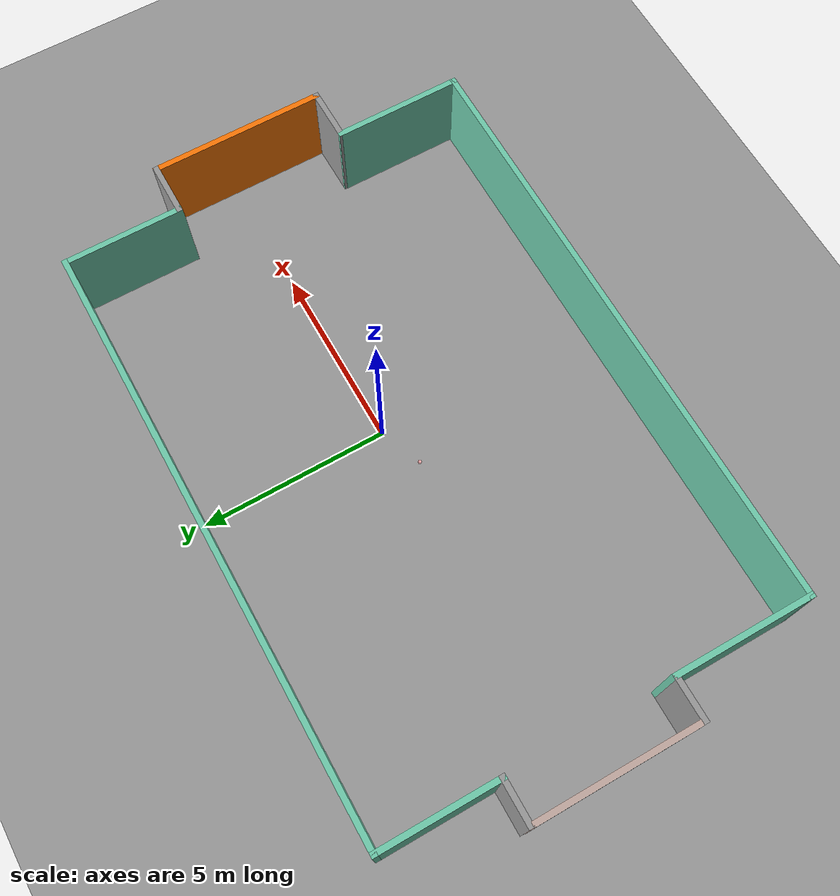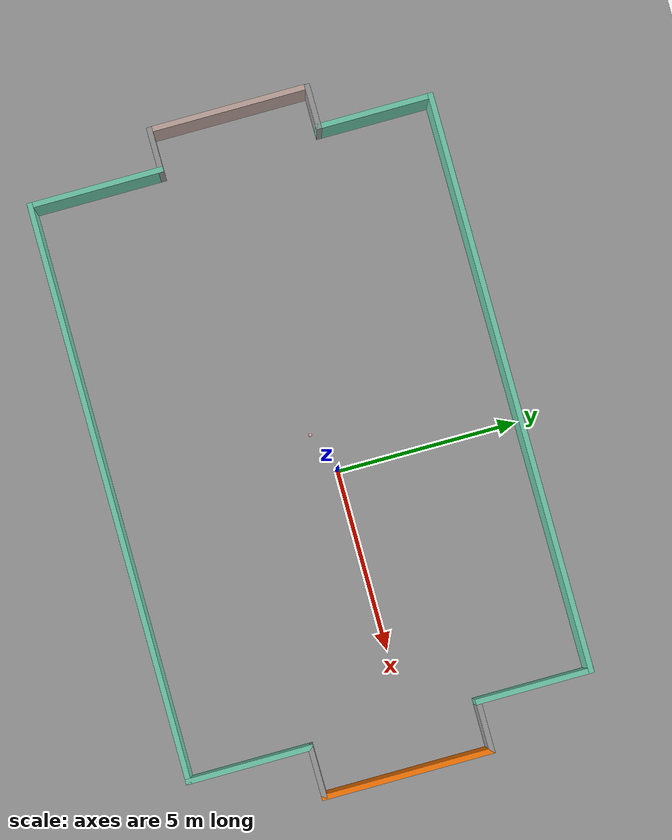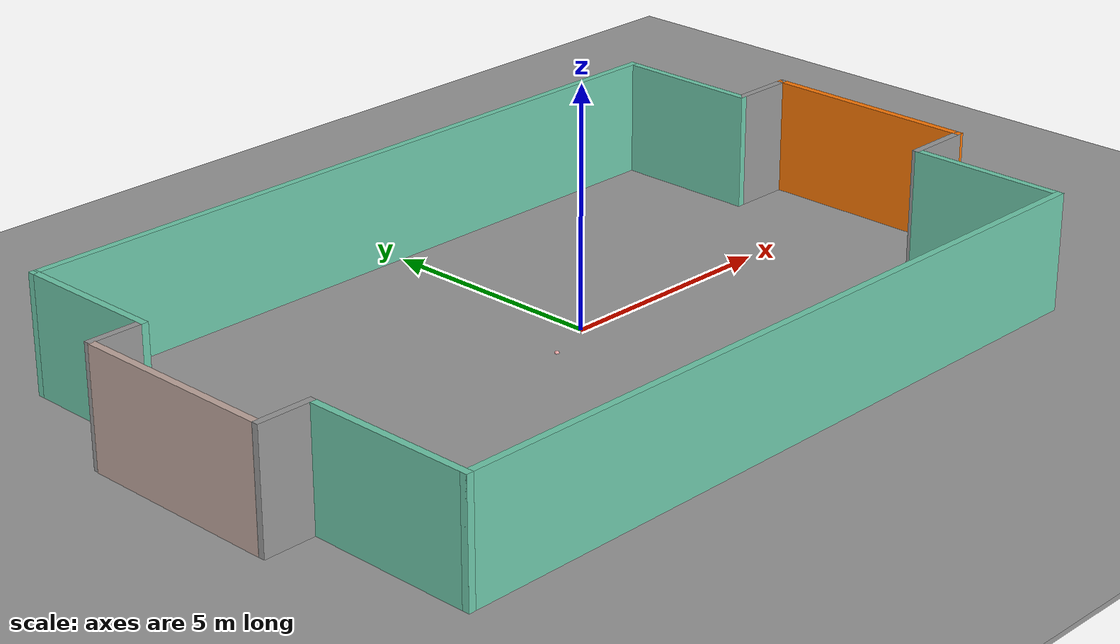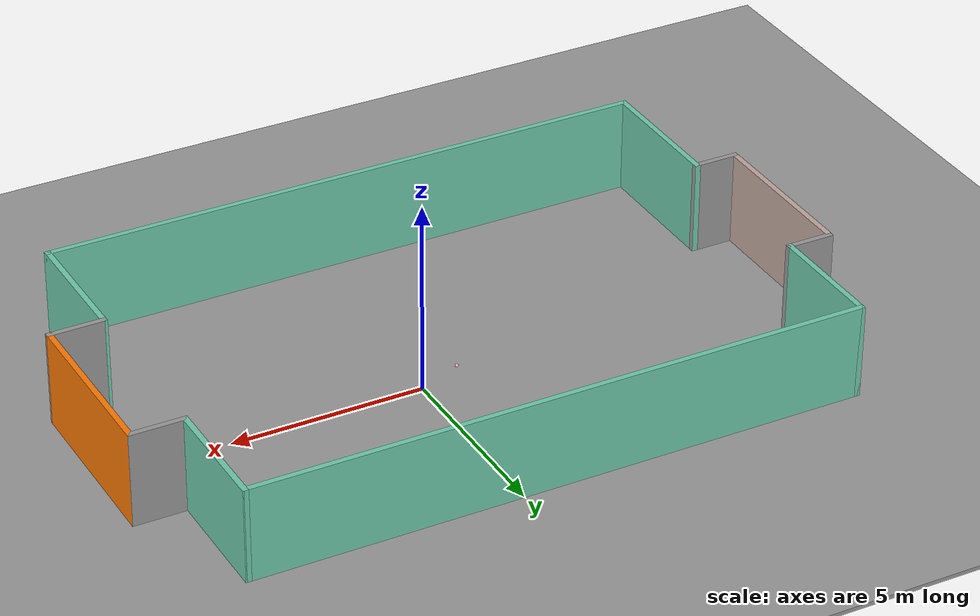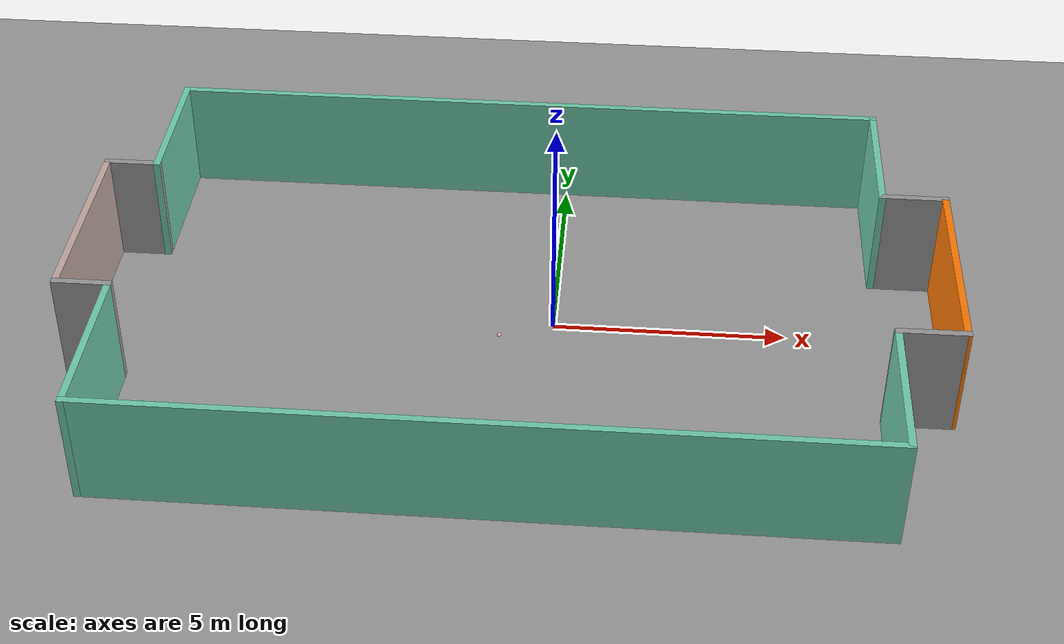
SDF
<sdf version="1.6">
 <world name="default">
  <scene><ambient>0.4 0.4 0.4 1</ambient><background>0.7 0.7 0.7 1</background><shadows>1</shadows></scene>
  <light name="sun" type="directional">
   <pose>0 0 10 0 -0 0</pose>
   <diffuse>0.8 0.8 0.8 1</diffuse>
   <specular>0.1 0.1 0.1 1</specular>
   <attenuation>
    <range>1000</range>
    <constant>0.9</constant>
    <linear>0.01</linear>
    <quadratic>0.001</quadratic>
   </attenuation>
   <direction>-0.5 0.5 -1</direction>
  </light>
  <model name="ground_plane">
   <static>1</static>
   <link name="link">
    <collision name="collision">
     <geometry><plane><normal>0 0 1</normal><size>100 100</size></plane></geometry>
     <surface><friction><ode><mu>100</mu><mu2>50</mu2></ode></friction></surface>
    </collision>
    <visual name="visual">
     <cast_shadows>0</cast_shadows>
     <geometry><plane><normal>0 0 1</normal><size>100 100</size></plane></geometry>
     <material>
      <script><uri>file://media/materials/scripts/gazebo.material</uri><name>Gazebo/Grey</name></script>
     </material>
    </visual>
   </link>
  </model>
  <physics name="default_physics" default="0" type="ode">
   <real_time_update_rate>1000</real_time_update_rate>
   <max_step_size>0.001</max_step_size>
   <real_time_factor>1</real_time_factor>
   <ode>
    <solver>
     <type>quick</type>
     <iters>150</iters>
     <precon_iters>0</precon_iters>
     <sor>1.4</sor>
     <use_dynamic_moi_rescaling>1</use_dynamic_moi_rescaling>
    </solver>
    <constraints>
     <cfm>1e-05</cfm>
     <erp>0.2</erp>
     <contact_max_correcting_vel>2000</contact_max_correcting_vel>
     <contact_surface_layer>0.01</contact_surface_layer>
    </constraints>
   </ode>
  </physics>
  <gravity>0 0 -9.8</gravity>
  <magnetic_field>6e-06 2.3e-05 -4.2e-05</magnetic_field>
  <atmosphere type="adiabatic"/>
  <spherical_coordinates>
   <surface_model>EARTH_WGS84</surface_model>
   <latitude_deg>0</latitude_deg>
   <longitude_deg>0</longitude_deg>
   <elevation>0</elevation>
   <heading_deg>0</heading_deg>
  </spherical_coordinates>
  <model name="Teren">
   <pose>-0.865263 -0.49642 0 0 -0 0</pose>
   <link name="Wall_16">
    <collision name="Wall_16_Collision">
     <geometry><box><size>16 0.15 2.5</size></box></geometry>
     <pose>0 0 1.25 0 -0 0</pose>
    </collision>
    <visual name="Wall_16_Visual">
     <pose>0 0 1.25 0 -0 0</pose>
     <geometry><box><size>16 0.15 2.5</size></box></geometry>
     <material>
      <script><uri>file://media/materials/scripts/gazebo.material</uri><name>Gazebo/Grey</name></script>
      <ambient>0.435294 0.796078 0.67451 1</ambient>
     </material>
    </visual>
    <pose>-0.126836 -5.5286 0 0 -0 3.14159</pose>
   </link>
   <link name="Wall_18">
    <collision name="Wall_18_Collision">
     <geometry><box><size>16 0.15 2.5</size></box></geometry>
     <pose>0 0 1.25 0 -0 0</pose>
    </collision>
    <visual name="Wall_18_Visual">
     <pose>0 0 1.25 0 -0 0</pose>
     <geometry><box><size>16 0.15 2.5</size></box></geometry>
     <material>
      <script><uri>file://media/materials/scripts/gazebo.material</uri><name>Gazebo/Grey</name></script>
      <ambient>0.435294 0.796078 0.67451 1</ambient>
     </material>
    </visual>
    <pose>-0.11836 5.5286 0 0 -0 0</pose>
   </link>
   <link name="Wall_20">
    <collision name="Wall_20_Collision">
     <geometry><box><size>4.25 0.15 2.5</size></box></geometry>
     <pose>0 0 1.25 0 -0 0</pose>
    </collision>
    <visual name="Wall_20_Visual">
     <pose>0 0 1.25 0 -0 0</pose>
     <geometry><box><size>4.25 0.15 2.5</size></box></geometry>
     <material>
      <script><uri>file://media/materials/scripts/gazebo.material</uri><name>Gazebo/Grey</name></script>
      <ambient>0.760784 0.662745 0.627451 1</ambient>
     </material>
    </visual>
    <pose>-9.15704 0.260164 0 0 -0 1.5708</pose>
   </link>
   <link name="Wall_22">
    <collision name="Wall_22_Collision">
     <geometry><box><size>3.25 0.15 2.5</size></box></geometry>
     <pose>0 0 1.25 0 -0 0</pose>
    </collision>
    <visual name="Wall_22_Visual">
     <pose>0 0 1.25 0 -0 0</pose>
     <geometry><box><size>3.25 0.15 2.5</size></box></geometry>
     <material>
      <script><uri>file://media/materials/scripts/gazebo.material</uri><name>Gazebo/Grey</name></script>
      <ambient>0.435294 0.796078 0.67451 1</ambient>
     </material>
    </visual>
    <pose>-8.04336 3.9786 0 0 0 -1.5708</pose>
   </link>
   <link name="Wall_23">
    <collision name="Wall_23_Collision">
     <geometry><box><size>1.25 0.15 2.5</size></box></geometry>
     <pose>0 0 1.25 0 -0 0</pose>
    </collision>
    <visual name="Wall_23_Visual">
     <pose>0 0 1.25 0 -0 0</pose>
     <geometry><box><size>1.25 0.15 2.5</size></box></geometry>
     <material>
      <script><uri>file://media/materials/scripts/gazebo.material</uri><name>Gazebo/Grey</name></script>
      <ambient>1 1 1 1</ambient>
     </material>
    </visual>
    <pose>-8.59336 2.42861 0 0 -0 3.14159</pose>
   </link>
   <link name="Wall_25">
    <collision name="Wall_25_Collision">
     <geometry><box><size>3.75 0.15 2.5</size></box></geometry>
     <pose>0 0 1.25 0 -0 0</pose>
    </collision>
    <visual name="Wall_25_Visual">
     <pose>0 0 1.25 0 -0 0</pose>
     <geometry><box><size>3.75 0.15 2.5</size></box></geometry>
     <material>
      <script><uri>file://media/materials/scripts/gazebo.material</uri><name>Gazebo/Grey</name></script>
      <ambient>0.435294 0.796078 0.67451 1</ambient>
     </material>
    </visual>
    <pose>-8.05184 -3.7286 0 0 -0 1.5708</pose>
   </link>
   <link name="Wall_26">
    <collision name="Wall_26_Collision">
     <geometry><box><size>1.25 0.15 2.5</size></box></geometry>
     <pose>0 0 1.25 0 -0 0</pose>
    </collision>
    <visual name="Wall_26_Visual">
     <pose>0 0 1.25 0 -0 0</pose>
     <geometry><box><size>1.25 0.15 2.5</size></box></geometry>
     <material>
      <script><uri>file://media/materials/scripts/gazebo.material</uri><name>Gazebo/Grey</name></script>
      <ambient>1 1 1 1</ambient>
     </material>
    </visual>
    <pose>-8.60184 -1.9286 0 0 -0 3.14159</pose>
   </link>
   <link name="Wall_28">
    <collision name="Wall_28_Collision">
     <geometry><box><size>3.5 0.15 2.5</size></box></geometry>
     <pose>0 0 1.25 0 -0 0</pose>
    </collision>
    <visual name="Wall_28_Visual">
     <pose>0 0 1.25 0 -0 0</pose>
     <geometry><box><size>3.5 0.15 2.5</size></box></geometry>
     <material>
      <script><uri>file://media/materials/scripts/gazebo.material</uri><name>Gazebo/Grey</name></script>
      <ambient>0.435294 0.796078 0.67451 1</ambient>
     </material>
    </visual>
    <pose>7.79816 -3.8536 0 0 -0 1.5708</pose>
   </link>
   <link name="Wall_30">
    <collision name="Wall_30_Collision">
     <geometry><box><size>3.25 0.15 2.5</size></box></geometry>
     <pose>0 0 1.25 0 -0 0</pose>
    </collision>
    <visual name="Wall_30_Visual">
     <pose>0 0 1.25 0 -0 0</pose>
     <geometry><box><size>3.25 0.15 2.5</size></box></geometry>
     <material>
      <script><uri>file://media/materials/scripts/gazebo.material</uri><name>Gazebo/Grey</name></script>
      <ambient>0.435294 0.796078 0.67451 1</ambient>
     </material>
    </visual>
    <pose>7.80664 3.9786 0 0 0 -1.5708</pose>
   </link>
   <link name="Wall_31">
    <collision name="Wall_31_Collision">
     <geometry><box><size>1.5 0.15 2.5</size></box></geometry>
     <pose>0 0 1.25 0 -0 0</pose>
    </collision>
    <visual name="Wall_31_Visual">
     <pose>0 0 1.25 0 -0 0</pose>
     <geometry><box><size>1.5 0.15 2.5</size></box></geometry>
     <material>
      <script><uri>file://media/materials/scripts/gazebo.material</uri><name>Gazebo/Grey</name></script>
      <ambient>1 1 1 1</ambient>
     </material>
    </visual>
    <pose>8.48164 2.42861 0 0 -0 0</pose>
   </link>
   <link name="Wall_32">
    <collision name="Wall_32_Collision">
     <geometry><box><size>4.75 0.15 2.5</size></box></geometry>
     <pose>0 0 1.25 0 -0 0</pose>
    </collision>
    <visual name="Wall_32_Visual">
     <pose>0 0 1.25 0 -0 0</pose>
     <geometry><box><size>4.75 0.15 2.5</size></box></geometry>
     <material>
      <script><uri>file://media/materials/scripts/gazebo.material</uri><name>Gazebo/Grey</name></script>
      <ambient>0.996078 0.47451 0.0196078 1</ambient>
     </material>
    </visual>
    <pose>9.15664 0.128605 0 0 0 -1.5708</pose>
   </link>
   <link name="Wall_34">
    <collision name="Wall_34_Collision">
     <geometry><box><size>1.50849 0.15 2.5</size></box></geometry>
     <pose>0 0 1.25 0 -0 0</pose>
    </collision>
    <visual name="Wall_34_Visual">
     <pose>0 0 1.25 0 -0 0</pose>
     <geometry><box><size>1.50849 0.15 2.5</size></box></geometry>
     <material>
      <script><uri>file://media/materials/scripts/gazebo.material</uri><name>Gazebo/Grey</name></script>
      <ambient>1 1 1 1</ambient>
     </material>
    </visual>
    <pose>8.4774 -2.175 0 0 0 -3.13628</pose>
   </link>
   <static>1</static>
  </model>
  <model name="ground_plane_0">
   <static>1</static>
   <link name="link">
    <collision name="collision">
     <geometry><plane><normal>0 0 1</normal><size>100 100</size></plane></geometry>
     <surface><friction><ode><mu>100</mu><mu2>50</mu2></ode></friction></surface>
    </collision>
    <visual name="visual">
     <cast_shadows>0</cast_shadows>
     <geometry><plane><normal>0 0 1</normal><size>100 100</size></plane></geometry>
     <material>
      <script><uri>file://media/materials/scripts/gazebo.material</uri><name>Gazebo/Grey</name></script>
     </material>
    </visual>
   </link>
   <pose>1.55307 7.79474 0 0 -0 0</pose>
  </model>
  <model name="minge_1_0">
   <link name="minge::link">
    <pose>-2.65949 1.42518 -0.208166 0 -0 0</pose>
    <inertial>
     <mass>0.00093418</mass>
     <inertia><ixx>8.9e-07</ixx><ixy>0</ixy><ixz>0</ixz><iyy>8.9e-07</iyy><iyz>0</iyz><izz>8.9e-07</izz></inertia>
    </inertial>
    <visual name="visual">
     <geometry><sphere><radius>0.0488775</radius></sphere></geometry>
     <material>
      <script><name>Gazebo/Grey</name><uri>file://media/materials/scripts/gazebo.material</uri></script>
      <ambient>1 0.3 0.3 1</ambient>
      <diffuse>1 0.7 0.7 1</diffuse>
      <specular>0.21 0.01 0.01 1</specular>
      <emissive>0.8 0 0 1</emissive>
      <shader type="vertex"><normal_map>__default__</normal_map></shader>
     </material>
    </visual>
    <collision name="collision">
     <geometry><sphere><radius>0.048877</radius></sphere></geometry>
     <surface>
      <friction>
       <ode><mu>1</mu><mu2>1</mu2><fdir1>0 0 0</fdir1><slip1>0</slip1><slip2>0</slip2></ode>
       <torsional>
        <coefficient>1</coefficient>
        <patch_radius>0</patch_radius>
        <surface_radius>0</surface_radius>
        <use_patch_radius>1</use_patch_radius>
        <ode><slip>0</slip></ode>
       </torsional>
      </friction>
      <bounce><restitution_coefficient>0</restitution_coefficient><threshold>1e+06</threshold></bounce>
      <contact>
       <collide_without_contact>0</collide_without_contact>
       <collide_without_contact_bitmask>1</collide_without_contact_bitmask>
       <collide_bitmask>1</collide_bitmask>
       <ode>
        <soft_cfm>0</soft_cfm>
        <soft_erp>0.2</soft_erp>
        <kp>1e+13</kp>
        <kd>1</kd>
        <max_vel>0.01</max_vel>
        <min_depth>0</min_depth>
       </ode>
       <bullet>
        <split_impulse>1</split_impulse>
        <split_impulse_penetration_threshold>-0.01</split_impulse_penetration_threshold>
        <soft_cfm>0</soft_cfm>
        <soft_erp>0.2</soft_erp>
        <kp>1e+13</kp>
        <kd>1</kd>
       </bullet>
      </contact>
     </surface>
    </collision>
   </link>
   <static>0</static>
   <pose>1.51491 -1.87453 0.257033 0 -0 0</pose>
  </model>
 </world>
</sdf>
